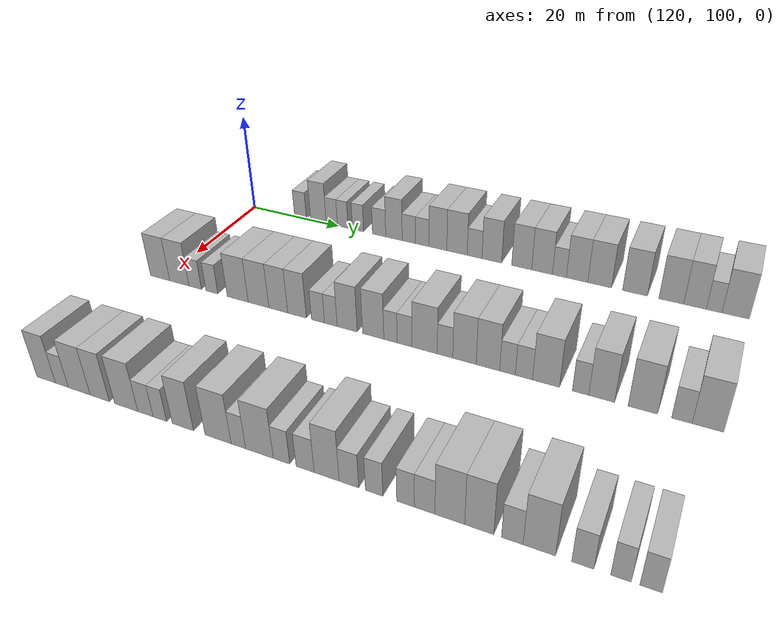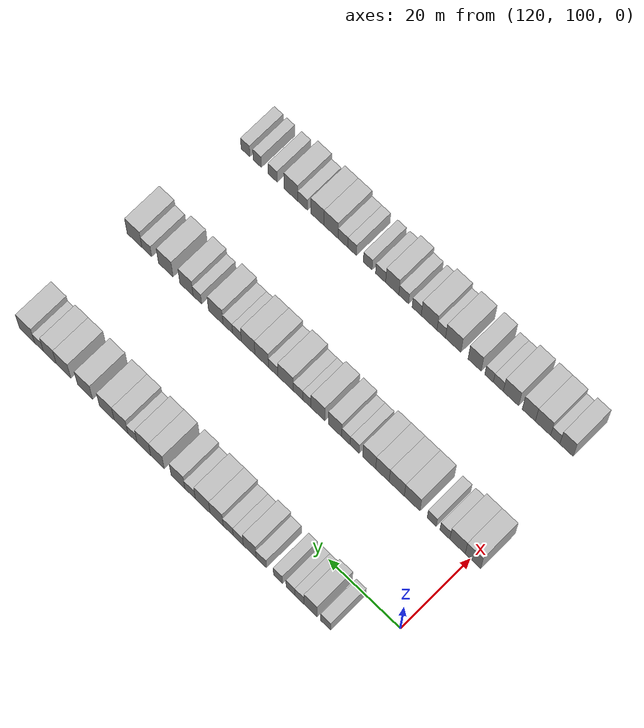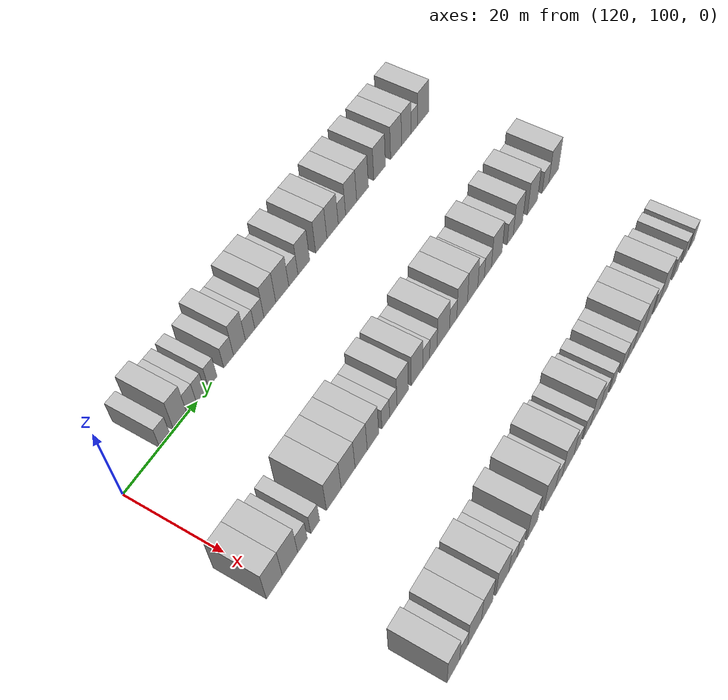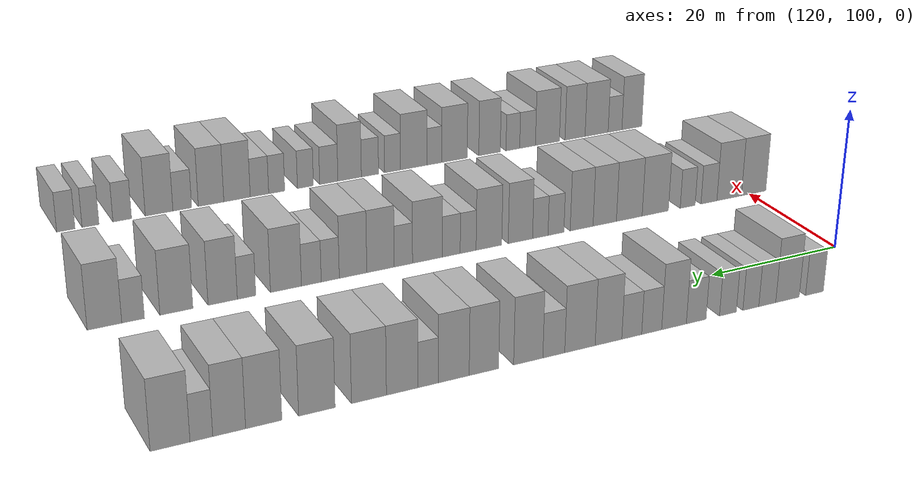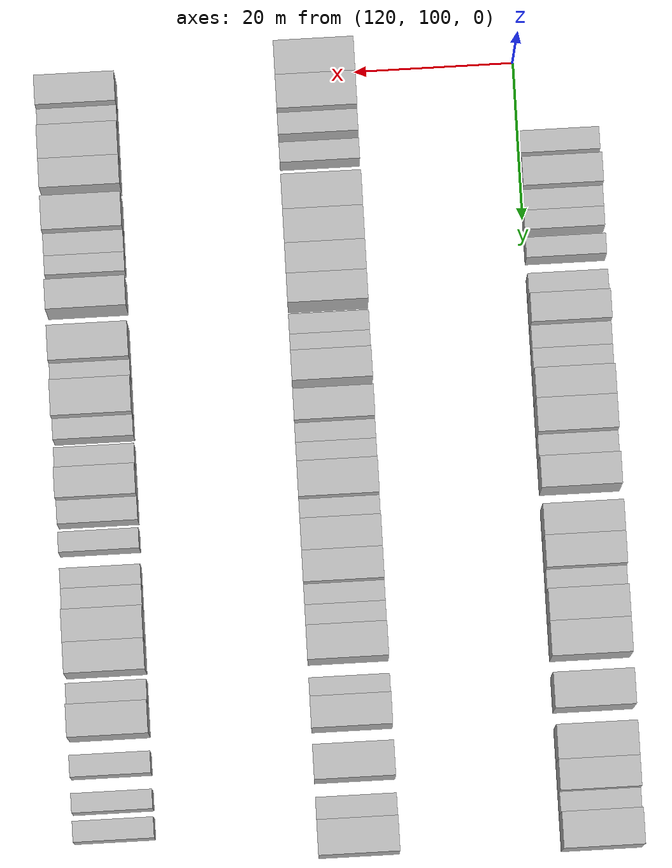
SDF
<sdf version="1.6">
 <world name="default">
  <model name="building_803">
   <static>1</static>
   <pose>115.0000 111.0965 0 0.000000 0.000000 0.000000</pose>
   <link name="link">
    <pose>0 0 3.00 0 0 0</pose>
    <collision name="collision"><geometry><box><size>10.0000 2.8066 6.0000</size></box></geometry></collision>
    <visual name="visual">
     <cast_shadows>0</cast_shadows>
     <geometry><box><size>10.0000 2.8066 6.0000</size></box></geometry>
     <material>
      <script>
       <uri>model://HANNAS_wall/materials/scripts</uri>
       <uri>model://HANNAS_wall/materials/textures</uri>
       <name>vrc/HANNAS_wall</name>
      </script>
     </material>
    </visual>
   </link>
  </model>
  <model name="building_804">
   <static>1</static>
   <pose>115.0000 115.3254 0 0.000000 0.000000 0.000000</pose>
   <link name="link">
    <pose>0 0 4.50 0 0 0</pose>
    <collision name="collision"><geometry><box><size>10.0000 3.6513 9.0000</size></box></geometry></collision>
    <visual name="visual">
     <cast_shadows>0</cast_shadows>
     <geometry><box><size>10.0000 3.6513 9.0000</size></box></geometry>
     <material>
      <script>
       <uri>model://HANNAS_wall/materials/scripts</uri>
       <uri>model://HANNAS_wall/materials/textures</uri>
       <name>vrc/HANNAS_wall</name>
      </script>
     </material>
    </visual>
   </link>
  </model>
  <model name="building_805">
   <static>1</static>
   <pose>115.0000 118.4562 0 0.000000 0.000000 0.000000</pose>
   <link name="link">
    <pose>0 0 3.00 0 0 0</pose>
    <collision name="collision"><geometry><box><size>10.0000 2.6103 6.0000</size></box></geometry></collision>
    <visual name="visual">
     <cast_shadows>0</cast_shadows>
     <geometry><box><size>10.0000 2.6103 6.0000</size></box></geometry>
     <material>
      <script>
       <uri>model://HANNAS_wall/materials/scripts</uri>
       <uri>model://HANNAS_wall/materials/textures</uri>
       <name>vrc/HANNAS_wall</name>
      </script>
     </material>
    </visual>
   </link>
  </model>
  <model name="building_806">
   <static>1</static>
   <pose>115.0000 120.9748 0 0.000000 0.000000 0.000000</pose>
   <link name="link">
    <pose>0 0 3.00 0 0 0</pose>
    <collision name="collision"><geometry><box><size>10.0000 2.4270 6.0000</size></box></geometry></collision>
    <visual name="visual">
     <cast_shadows>0</cast_shadows>
     <geometry><box><size>10.0000 2.4270 6.0000</size></box></geometry>
     <material>
      <script>
       <uri>model://HANNAS_wall/materials/scripts</uri>
       <uri>model://HANNAS_wall/materials/textures</uri>
       <name>vrc/HANNAS_wall</name>
      </script>
     </material>
    </visual>
   </link>
  </model>
  <model name="building_807">
   <static>1</static>
   <pose>115.0000 124.4572 0 0.000000 0.000000 0.000000</pose>
   <link name="link">
    <pose>0 0 3.00 0 0 0</pose>
    <collision name="collision"><geometry><box><size>10.0000 2.5378 6.0000</size></box></geometry></collision>
    <visual name="visual">
     <cast_shadows>0</cast_shadows>
     <geometry><box><size>10.0000 2.5378 6.0000</size></box></geometry>
     <material>
      <script>
       <uri>model://HANNAS_wall/materials/scripts</uri>
       <uri>model://HANNAS_wall/materials/textures</uri>
       <name>vrc/HANNAS_wall</name>
      </script>
     </material>
    </visual>
   </link>
  </model>
  <model name="building_808">
   <static>1</static>
   <pose>115.0000 129.1855 0 0.000000 0.000000 0.000000</pose>
   <link name="link">
    <pose>0 0 3.00 0 0 0</pose>
    <collision name="collision"><geometry><box><size>10.0000 2.9189 6.0000</size></box></geometry></collision>
    <visual name="visual">
     <cast_shadows>0</cast_shadows>
     <geometry><box><size>10.0000 2.9189 6.0000</size></box></geometry>
     <material>
      <script>
       <uri>model://HANNAS_wall/materials/scripts</uri>
       <uri>model://HANNAS_wall/materials/textures</uri>
       <name>vrc/HANNAS_wall</name>
      </script>
     </material>
    </visual>
   </link>
  </model>
  <model name="building_809">
   <static>1</static>
   <pose>115.0000 132.4509 0 0.000000 0.000000 0.000000</pose>
   <link name="link">
    <pose>0 0 4.50 0 0 0</pose>
    <collision name="collision"><geometry><box><size>10.0000 3.6120 9.0000</size></box></geometry></collision>
    <visual name="visual">
     <cast_shadows>0</cast_shadows>
     <geometry><box><size>10.0000 3.6120 9.0000</size></box></geometry>
     <material>
      <script>
       <uri>model://HANNAS_wall/materials/scripts</uri>
       <uri>model://HANNAS_wall/materials/textures</uri>
       <name>vrc/HANNAS_wall</name>
      </script>
     </material>
    </visual>
   </link>
  </model>
  <model name="building_810">
   <static>1</static>
   <pose>115.0000 135.7019 0 0.000000 0.000000 0.000000</pose>
   <link name="link">
    <pose>0 0 3.00 0 0 0</pose>
    <collision name="collision"><geometry><box><size>10.0000 2.8900 6.0000</size></box></geometry></collision>
    <visual name="visual">
     <cast_shadows>0</cast_shadows>
     <geometry><box><size>10.0000 2.8900 6.0000</size></box></geometry>
     <material>
      <script>
       <uri>model://HANNAS_wall/materials/scripts</uri>
       <uri>model://HANNAS_wall/materials/textures</uri>
       <name>vrc/HANNAS_wall</name>
      </script>
     </material>
    </visual>
   </link>
  </model>
  <model name="building_811">
   <static>1</static>
   <pose>115.0000 138.5668 0 0.000000 0.000000 0.000000</pose>
   <link name="link">
    <pose>0 0 3.00 0 0 0</pose>
    <collision name="collision"><geometry><box><size>10.0000 2.8397 6.0000</size></box></geometry></collision>
    <visual name="visual">
     <cast_shadows>0</cast_shadows>
     <geometry><box><size>10.0000 2.8397 6.0000</size></box></geometry>
     <material>
      <script>
       <uri>model://HANNAS_wall/materials/scripts</uri>
       <uri>model://HANNAS_wall/materials/textures</uri>
       <name>vrc/HANNAS_wall</name>
      </script>
     </material>
    </visual>
   </link>
  </model>
  <model name="building_812">
   <static>1</static>
   <pose>115.0000 141.8644 0 0.000000 0.000000 0.000000</pose>
   <link name="link">
    <pose>0 0 4.50 0 0 0</pose>
    <collision name="collision"><geometry><box><size>10.0000 3.7555 9.0000</size></box></geometry></collision>
    <visual name="visual">
     <cast_shadows>0</cast_shadows>
     <geometry><box><size>10.0000 3.7555 9.0000</size></box></geometry>
     <material>
      <script>
       <uri>model://HANNAS_wall/materials/scripts</uri>
       <uri>model://HANNAS_wall/materials/textures</uri>
       <name>vrc/HANNAS_wall</name>
      </script>
     </material>
    </visual>
   </link>
  </model>
  <model name="building_813">
   <static>1</static>
   <pose>115.0000 145.8538 0 0.000000 0.000000 0.000000</pose>
   <link name="link">
    <pose>0 0 4.50 0 0 0</pose>
    <collision name="collision"><geometry><box><size>10.0000 4.2234 9.0000</size></box></geometry></collision>
    <visual name="visual">
     <cast_shadows>0</cast_shadows>
     <geometry><box><size>10.0000 4.2234 9.0000</size></box></geometry>
     <material>
      <script>
       <uri>model://HANNAS_wall/materials/scripts</uri>
       <uri>model://HANNAS_wall/materials/textures</uri>
       <name>vrc/HANNAS_wall</name>
      </script>
     </material>
    </visual>
   </link>
  </model>
  <model name="building_814">
   <static>1</static>
   <pose>115.0000 149.4655 0 0.000000 0.000000 0.000000</pose>
   <link name="link">
    <pose>0 0 3.00 0 0 0</pose>
    <collision name="collision"><geometry><box><size>10.0000 3.0000 6.0000</size></box></geometry></collision>
    <visual name="visual">
     <cast_shadows>0</cast_shadows>
     <geometry><box><size>10.0000 3.0000 6.0000</size></box></geometry>
     <material>
      <script>
       <uri>model://HANNAS_wall/materials/scripts</uri>
       <uri>model://HANNAS_wall/materials/textures</uri>
       <name>vrc/HANNAS_wall</name>
      </script>
     </material>
    </visual>
   </link>
  </model>
  <model name="building_815">
   <static>1</static>
   <pose>115.0000 152.9398 0 0.000000 0.000000 0.000000</pose>
   <link name="link">
    <pose>0 0 4.50 0 0 0</pose>
    <collision name="collision"><geometry><box><size>10.0000 3.9487 9.0000</size></box></geometry></collision>
    <visual name="visual">
     <cast_shadows>0</cast_shadows>
     <geometry><box><size>10.0000 3.9487 9.0000</size></box></geometry>
     <material>
      <script>
       <uri>model://HANNAS_wall/materials/scripts</uri>
       <uri>model://HANNAS_wall/materials/textures</uri>
       <name>vrc/HANNAS_wall</name>
      </script>
     </material>
    </visual>
   </link>
  </model>
  <model name="building_816">
   <static>1</static>
   <pose>115.0000 158.8554 0 0.000000 0.000000 0.000000</pose>
   <link name="link">
    <pose>0 0 4.50 0 0 0</pose>
    <collision name="collision"><geometry><box><size>10.0000 3.8824 9.0000</size></box></geometry></collision>
    <visual name="visual">
     <cast_shadows>0</cast_shadows>
     <geometry><box><size>10.0000 3.8824 9.0000</size></box></geometry>
     <material>
      <script>
       <uri>model://HANNAS_wall/materials/scripts</uri>
       <uri>model://HANNAS_wall/materials/textures</uri>
       <name>vrc/HANNAS_wall</name>
      </script>
     </material>
    </visual>
   </link>
  </model>
  <model name="building_817">
   <static>1</static>
   <pose>115.0000 162.7954 0 0.000000 0.000000 0.000000</pose>
   <link name="link">
    <pose>0 0 4.50 0 0 0</pose>
    <collision name="collision"><geometry><box><size>10.0000 3.9976 9.0000</size></box></geometry></collision>
    <visual name="visual">
     <cast_shadows>0</cast_shadows>
     <geometry><box><size>10.0000 3.9976 9.0000</size></box></geometry>
     <material>
      <script>
       <uri>model://HANNAS_wall/materials/scripts</uri>
       <uri>model://HANNAS_wall/materials/textures</uri>
       <name>vrc/HANNAS_wall</name>
      </script>
     </material>
    </visual>
   </link>
  </model>
  <model name="building_818">
   <static>1</static>
   <pose>115.0000 166.1039 0 0.000000 0.000000 0.000000</pose>
   <link name="link">
    <pose>0 0 3.00 0 0 0</pose>
    <collision name="collision"><geometry><box><size>10.0000 2.6195 6.0000</size></box></geometry></collision>
    <visual name="visual">
     <cast_shadows>0</cast_shadows>
     <geometry><box><size>10.0000 2.6195 6.0000</size></box></geometry>
     <material>
      <script>
       <uri>model://HANNAS_wall/materials/scripts</uri>
       <uri>model://HANNAS_wall/materials/textures</uri>
       <name>vrc/HANNAS_wall</name>
      </script>
     </material>
    </visual>
   </link>
  </model>
  <model name="building_819">
   <static>1</static>
   <pose>115.0000 169.4105 0 0.000000 0.000000 0.000000</pose>
   <link name="link">
    <pose>0 0 4.50 0 0 0</pose>
    <collision name="collision"><geometry><box><size>10.0000 3.9935 9.0000</size></box></geometry></collision>
    <visual name="visual">
     <cast_shadows>0</cast_shadows>
     <geometry><box><size>10.0000 3.9935 9.0000</size></box></geometry>
     <material>
      <script>
       <uri>model://HANNAS_wall/materials/scripts</uri>
       <uri>model://HANNAS_wall/materials/textures</uri>
       <name>vrc/HANNAS_wall</name>
      </script>
     </material>
    </visual>
   </link>
  </model>
  <model name="building_820">
   <static>1</static>
   <pose>115.0000 173.5802 0 0.000000 0.000000 0.000000</pose>
   <link name="link">
    <pose>0 0 4.50 0 0 0</pose>
    <collision name="collision"><geometry><box><size>10.0000 4.3460 9.0000</size></box></geometry></collision>
    <visual name="visual">
     <cast_shadows>0</cast_shadows>
     <geometry><box><size>10.0000 4.3460 9.0000</size></box></geometry>
     <material>
      <script>
       <uri>model://HANNAS_wall/materials/scripts</uri>
       <uri>model://HANNAS_wall/materials/textures</uri>
       <name>vrc/HANNAS_wall</name>
      </script>
     </material>
    </visual>
   </link>
  </model>
  <model name="building_821">
   <static>1</static>
   <pose>115.0000 179.9639 0 0.000000 0.000000 0.000000</pose>
   <link name="link">
    <pose>0 0 4.50 0 0 0</pose>
    <collision name="collision"><geometry><box><size>10.0000 4.4213 9.0000</size></box></geometry></collision>
    <visual name="visual">
     <cast_shadows>0</cast_shadows>
     <geometry><box><size>10.0000 4.4213 9.0000</size></box></geometry>
     <material>
      <script>
       <uri>model://HANNAS_wall/materials/scripts</uri>
       <uri>model://HANNAS_wall/materials/textures</uri>
       <name>vrc/HANNAS_wall</name>
      </script>
     </material>
    </visual>
   </link>
  </model>
  <model name="building_822">
   <static>1</static>
   <pose>115.0000 186.3128 0 0.000000 0.000000 0.000000</pose>
   <link name="link">
    <pose>0 0 4.50 0 0 0</pose>
    <collision name="collision"><geometry><box><size>10.0000 4.2764 9.0000</size></box></geometry></collision>
    <visual name="visual">
     <cast_shadows>0</cast_shadows>
     <geometry><box><size>10.0000 4.2764 9.0000</size></box></geometry>
     <material>
      <script>
       <uri>model://HANNAS_wall/materials/scripts</uri>
       <uri>model://HANNAS_wall/materials/textures</uri>
       <name>vrc/HANNAS_wall</name>
      </script>
     </material>
    </visual>
   </link>
  </model>
  <model name="building_823">
   <static>1</static>
   <pose>115.0000 190.3576 0 0.000000 0.000000 0.000000</pose>
   <link name="link">
    <pose>0 0 4.50 0 0 0</pose>
    <collision name="collision"><geometry><box><size>10.0000 3.8133 9.0000</size></box></geometry></collision>
    <visual name="visual">
     <cast_shadows>0</cast_shadows>
     <geometry><box><size>10.0000 3.8133 9.0000</size></box></geometry>
     <material>
      <script>
       <uri>model://HANNAS_wall/materials/scripts</uri>
       <uri>model://HANNAS_wall/materials/textures</uri>
       <name>vrc/HANNAS_wall</name>
      </script>
     </material>
    </visual>
   </link>
  </model>
  <model name="building_824">
   <static>1</static>
   <pose>115.0000 193.5667 0 0.000000 0.000000 0.000000</pose>
   <link name="link">
    <pose>0 0 3.00 0 0 0</pose>
    <collision name="collision"><geometry><box><size>10.0000 2.6048 6.0000</size></box></geometry></collision>
    <visual name="visual">
     <cast_shadows>0</cast_shadows>
     <geometry><box><size>10.0000 2.6048 6.0000</size></box></geometry>
     <material>
      <script>
       <uri>model://HANNAS_wall/materials/scripts</uri>
       <uri>model://HANNAS_wall/materials/textures</uri>
       <name>vrc/HANNAS_wall</name>
      </script>
     </material>
    </visual>
   </link>
  </model>
  <model name="building_825">
   <static>1</static>
   <pose>115.0000 197.1175 0 0.000000 0.000000 0.000000</pose>
   <link name="link">
    <pose>0 0 4.50 0 0 0</pose>
    <collision name="collision"><geometry><box><size>10.0000 4.4969 9.0000</size></box></geometry></collision>
    <visual name="visual">
     <cast_shadows>0</cast_shadows>
     <geometry><box><size>10.0000 4.4969 9.0000</size></box></geometry>
     <material>
      <script>
       <uri>model://HANNAS_wall/materials/scripts</uri>
       <uri>model://HANNAS_wall/materials/textures</uri>
       <name>vrc/HANNAS_wall</name>
      </script>
     </material>
    </visual>
   </link>
  </model>
  <model name="building_1028">
   <static>1</static>
   <pose>145.0000 99.2773 0 0.000000 0.000000 0.000000</pose>
   <link name="link">
    <pose>0 0 4.50 0 0 0</pose>
    <collision name="collision"><geometry><box><size>10.0000 4.3175 9.0000</size></box></geometry></collision>
    <visual name="visual">
     <cast_shadows>0</cast_shadows>
     <geometry><box><size>10.0000 4.3175 9.0000</size></box></geometry>
     <material>
      <script>
       <uri>model://HANNAS_wall/materials/scripts</uri>
       <uri>model://HANNAS_wall/materials/textures</uri>
       <name>vrc/HANNAS_wall</name>
      </script>
     </material>
    </visual>
   </link>
  </model>
  <model name="building_1029">
   <static>1</static>
   <pose>145.0000 103.5756 0 0.000000 0.000000 0.000000</pose>
   <link name="link">
    <pose>0 0 4.50 0 0 0</pose>
    <collision name="collision"><geometry><box><size>10.0000 4.2792 9.0000</size></box></geometry></collision>
    <visual name="visual">
     <cast_shadows>0</cast_shadows>
     <geometry><box><size>10.0000 4.2792 9.0000</size></box></geometry>
     <material>
      <script>
       <uri>model://HANNAS_wall/materials/scripts</uri>
       <uri>model://HANNAS_wall/materials/textures</uri>
       <name>vrc/HANNAS_wall</name>
      </script>
     </material>
    </visual>
   </link>
  </model>
  <model name="building_1030">
   <static>1</static>
   <pose>145.0000 107.0896 0 0.000000 0.000000 0.000000</pose>
   <link name="link">
    <pose>0 0 3.00 0 0 0</pose>
    <collision name="collision"><geometry><box><size>10.0000 2.7488 6.0000</size></box></geometry></collision>
    <visual name="visual">
     <cast_shadows>0</cast_shadows>
     <geometry><box><size>10.0000 2.7488 6.0000</size></box></geometry>
     <material>
      <script>
       <uri>model://HANNAS_wall/materials/scripts</uri>
       <uri>model://HANNAS_wall/materials/textures</uri>
       <name>vrc/HANNAS_wall</name>
      </script>
     </material>
    </visual>
   </link>
  </model>
  <model name="building_1031">
   <static>1</static>
   <pose>145.0000 110.7376 0 0.000000 0.000000 0.000000</pose>
   <link name="link">
    <pose>0 0 3.00 0 0 0</pose>
    <collision name="collision"><geometry><box><size>10.0000 2.5472 6.0000</size></box></geometry></collision>
    <visual name="visual">
     <cast_shadows>0</cast_shadows>
     <geometry><box><size>10.0000 2.5472 6.0000</size></box></geometry>
     <material>
      <script>
       <uri>model://HANNAS_wall/materials/scripts</uri>
       <uri>model://HANNAS_wall/materials/textures</uri>
       <name>vrc/HANNAS_wall</name>
      </script>
     </material>
    </visual>
   </link>
  </model>
  <model name="building_1032">
   <static>1</static>
   <pose>145.0000 116.2101 0 0.000000 0.000000 0.000000</pose>
   <link name="link">
    <pose>0 0 4.50 0 0 0</pose>
    <collision name="collision"><geometry><box><size>10.0000 4.3977 9.0000</size></box></geometry></collision>
    <visual name="visual">
     <cast_shadows>0</cast_shadows>
     <geometry><box><size>10.0000 4.3977 9.0000</size></box></geometry>
     <material>
      <script>
       <uri>model://HANNAS_wall/materials/scripts</uri>
       <uri>model://HANNAS_wall/materials/textures</uri>
       <name>vrc/HANNAS_wall</name>
      </script>
     </material>
    </visual>
   </link>
  </model>
  <model name="building_1033">
   <static>1</static>
   <pose>145.0000 120.5376 0 0.000000 0.000000 0.000000</pose>
   <link name="link">
    <pose>0 0 4.50 0 0 0</pose>
    <collision name="collision"><geometry><box><size>10.0000 4.2573 9.0000</size></box></geometry></collision>
    <visual name="visual">
     <cast_shadows>0</cast_shadows>
     <geometry><box><size>10.0000 4.2573 9.0000</size></box></geometry>
     <material>
      <script>
       <uri>model://HANNAS_wall/materials/scripts</uri>
       <uri>model://HANNAS_wall/materials/textures</uri>
       <name>vrc/HANNAS_wall</name>
      </script>
     </material>
    </visual>
   </link>
  </model>
  <model name="building_1034">
   <static>1</static>
   <pose>145.0000 124.5694 0 0.000000 0.000000 0.000000</pose>
   <link name="link">
    <pose>0 0 4.50 0 0 0</pose>
    <collision name="collision"><geometry><box><size>10.0000 3.8062 9.0000</size></box></geometry></collision>
    <visual name="visual">
     <cast_shadows>0</cast_shadows>
     <geometry><box><size>10.0000 3.8062 9.0000</size></box></geometry>
     <material>
      <script>
       <uri>model://HANNAS_wall/materials/scripts</uri>
       <uri>model://HANNAS_wall/materials/textures</uri>
       <name>vrc/HANNAS_wall</name>
      </script>
     </material>
    </visual>
   </link>
  </model>
  <model name="building_1035">
   <static>1</static>
   <pose>145.0000 128.3144 0 0.000000 0.000000 0.000000</pose>
   <link name="link">
    <pose>0 0 4.50 0 0 0</pose>
    <collision name="collision"><geometry><box><size>10.0000 3.6839 9.0000</size></box></geometry></collision>
    <visual name="visual">
     <cast_shadows>0</cast_shadows>
     <geometry><box><size>10.0000 3.6839 9.0000</size></box></geometry>
     <material>
      <script>
       <uri>model://HANNAS_wall/materials/scripts</uri>
       <uri>model://HANNAS_wall/materials/textures</uri>
       <name>vrc/HANNAS_wall</name>
      </script>
     </material>
    </visual>
   </link>
  </model>
  <model name="building_1036">
   <static>1</static>
   <pose>145.0000 132.4165 0 0.000000 0.000000 0.000000</pose>
   <link name="link">
    <pose>0 0 3.00 0 0 0</pose>
    <collision name="collision"><geometry><box><size>10.0000 2.5203 6.0000</size></box></geometry></collision>
    <visual name="visual">
     <cast_shadows>0</cast_shadows>
     <geometry><box><size>10.0000 2.5203 6.0000</size></box></geometry>
     <material>
      <script>
       <uri>model://HANNAS_wall/materials/scripts</uri>
       <uri>model://HANNAS_wall/materials/textures</uri>
       <name>vrc/HANNAS_wall</name>
      </script>
     </material>
    </visual>
   </link>
  </model>
  <model name="building_1037">
   <static>1</static>
   <pose>145.0000 134.8936 0 0.000000 0.000000 0.000000</pose>
   <link name="link">
    <pose>0 0 3.00 0 0 0</pose>
    <collision name="collision"><geometry><box><size>10.0000 2.4339 6.0000</size></box></geometry></collision>
    <visual name="visual">
     <cast_shadows>0</cast_shadows>
     <geometry><box><size>10.0000 2.4339 6.0000</size></box></geometry>
     <material>
      <script>
       <uri>model://HANNAS_wall/materials/scripts</uri>
       <uri>model://HANNAS_wall/materials/textures</uri>
       <name>vrc/HANNAS_wall</name>
      </script>
     </material>
    </visual>
   </link>
  </model>
  <model name="building_1038">
   <static>1</static>
   <pose>145.0000 138.0073 0 0.000000 0.000000 0.000000</pose>
   <link name="link">
    <pose>0 0 4.50 0 0 0</pose>
    <collision name="collision"><geometry><box><size>10.0000 3.7935 9.0000</size></box></geometry></collision>
    <visual name="visual">
     <cast_shadows>0</cast_shadows>
     <geometry><box><size>10.0000 3.7935 9.0000</size></box></geometry>
     <material>
      <script>
       <uri>model://HANNAS_wall/materials/scripts</uri>
       <uri>model://HANNAS_wall/materials/textures</uri>
       <name>vrc/HANNAS_wall</name>
      </script>
     </material>
    </visual>
   </link>
  </model>
  <model name="building_1039">
   <static>1</static>
   <pose>145.0000 142.8671 0 0.000000 0.000000 0.000000</pose>
   <link name="link">
    <pose>0 0 4.50 0 0 0</pose>
    <collision name="collision"><geometry><box><size>10.0000 3.9260 9.0000</size></box></geometry></collision>
    <visual name="visual">
     <cast_shadows>0</cast_shadows>
     <geometry><box><size>10.0000 3.9260 9.0000</size></box></geometry>
     <material>
      <script>
       <uri>model://HANNAS_wall/materials/scripts</uri>
       <uri>model://HANNAS_wall/materials/textures</uri>
       <name>vrc/HANNAS_wall</name>
      </script>
     </material>
    </visual>
   </link>
  </model>
  <model name="building_1040">
   <static>1</static>
   <pose>145.0000 146.0361 0 0.000000 0.000000 0.000000</pose>
   <link name="link">
    <pose>0 0 3.00 0 0 0</pose>
    <collision name="collision"><geometry><box><size>10.0000 2.4121 6.0000</size></box></geometry></collision>
    <visual name="visual">
     <cast_shadows>0</cast_shadows>
     <geometry><box><size>10.0000 2.4121 6.0000</size></box></geometry>
     <material>
      <script>
       <uri>model://HANNAS_wall/materials/scripts</uri>
       <uri>model://HANNAS_wall/materials/textures</uri>
       <name>vrc/HANNAS_wall</name>
      </script>
     </material>
    </visual>
   </link>
  </model>
  <model name="building_1041">
   <static>1</static>
   <pose>145.0000 148.5775 0 0.000000 0.000000 0.000000</pose>
   <link name="link">
    <pose>0 0 3.00 0 0 0</pose>
    <collision name="collision"><geometry><box><size>10.0000 2.6707 6.0000</size></box></geometry></collision>
    <visual name="visual">
     <cast_shadows>0</cast_shadows>
     <geometry><box><size>10.0000 2.6707 6.0000</size></box></geometry>
     <material>
      <script>
       <uri>model://HANNAS_wall/materials/scripts</uri>
       <uri>model://HANNAS_wall/materials/textures</uri>
       <name>vrc/HANNAS_wall</name>
      </script>
     </material>
    </visual>
   </link>
  </model>
  <model name="building_1042">
   <static>1</static>
   <pose>145.0000 152.1285 0 0.000000 0.000000 0.000000</pose>
   <link name="link">
    <pose>0 0 4.50 0 0 0</pose>
    <collision name="collision"><geometry><box><size>10.0000 4.4313 9.0000</size></box></geometry></collision>
    <visual name="visual">
     <cast_shadows>0</cast_shadows>
     <geometry><box><size>10.0000 4.4313 9.0000</size></box></geometry>
     <material>
      <script>
       <uri>model://HANNAS_wall/materials/scripts</uri>
       <uri>model://HANNAS_wall/materials/textures</uri>
       <name>vrc/HANNAS_wall</name>
      </script>
     </material>
    </visual>
   </link>
  </model>
  <model name="building_1043">
   <static>1</static>
   <pose>145.0000 155.6849 0 0.000000 0.000000 0.000000</pose>
   <link name="link">
    <pose>0 0 3.00 0 0 0</pose>
    <collision name="collision"><geometry><box><size>10.0000 2.6815 6.0000</size></box></geometry></collision>
    <visual name="visual">
     <cast_shadows>0</cast_shadows>
     <geometry><box><size>10.0000 2.6815 6.0000</size></box></geometry>
     <material>
      <script>
       <uri>model://HANNAS_wall/materials/scripts</uri>
       <uri>model://HANNAS_wall/materials/textures</uri>
       <name>vrc/HANNAS_wall</name>
      </script>
     </material>
    </visual>
   </link>
  </model>
  <model name="building_1044">
   <static>1</static>
   <pose>145.0000 159.0097 0 0.000000 0.000000 0.000000</pose>
   <link name="link">
    <pose>0 0 4.50 0 0 0</pose>
    <collision name="collision"><geometry><box><size>10.0000 3.9681 9.0000</size></box></geometry></collision>
    <visual name="visual">
     <cast_shadows>0</cast_shadows>
     <geometry><box><size>10.0000 3.9681 9.0000</size></box></geometry>
     <material>
      <script>
       <uri>model://HANNAS_wall/materials/scripts</uri>
       <uri>model://HANNAS_wall/materials/textures</uri>
       <name>vrc/HANNAS_wall</name>
      </script>
     </material>
    </visual>
   </link>
  </model>
  <model name="building_1045">
   <static>1</static>
   <pose>145.0000 162.9580 0 0.000000 0.000000 0.000000</pose>
   <link name="link">
    <pose>0 0 4.50 0 0 0</pose>
    <collision name="collision"><geometry><box><size>10.0000 3.9285 9.0000</size></box></geometry></collision>
    <visual name="visual">
     <cast_shadows>0</cast_shadows>
     <geometry><box><size>10.0000 3.9285 9.0000</size></box></geometry>
     <material>
      <script>
       <uri>model://HANNAS_wall/materials/scripts</uri>
       <uri>model://HANNAS_wall/materials/textures</uri>
       <name>vrc/HANNAS_wall</name>
      </script>
     </material>
    </visual>
   </link>
  </model>
  <model name="building_1046">
   <static>1</static>
   <pose>145.0000 166.1968 0 0.000000 0.000000 0.000000</pose>
   <link name="link">
    <pose>0 0 3.00 0 0 0</pose>
    <collision name="collision"><geometry><box><size>10.0000 2.5492 6.0000</size></box></geometry></collision>
    <visual name="visual">
     <cast_shadows>0</cast_shadows>
     <geometry><box><size>10.0000 2.5492 6.0000</size></box></geometry>
     <material>
      <script>
       <uri>model://HANNAS_wall/materials/scripts</uri>
       <uri>model://HANNAS_wall/materials/textures</uri>
       <name>vrc/HANNAS_wall</name>
      </script>
     </material>
    </visual>
   </link>
  </model>
  <model name="building_1047">
   <static>1</static>
   <pose>145.0000 168.8538 0 0.000000 0.000000 0.000000</pose>
   <link name="link">
    <pose>0 0 3.00 0 0 0</pose>
    <collision name="collision"><geometry><box><size>10.0000 2.7649 6.0000</size></box></geometry></collision>
    <visual name="visual">
     <cast_shadows>0</cast_shadows>
     <geometry><box><size>10.0000 2.7649 6.0000</size></box></geometry>
     <material>
      <script>
       <uri>model://HANNAS_wall/materials/scripts</uri>
       <uri>model://HANNAS_wall/materials/textures</uri>
       <name>vrc/HANNAS_wall</name>
      </script>
     </material>
    </visual>
   </link>
  </model>
  <model name="building_1048">
   <static>1</static>
   <pose>145.0000 172.3746 0 0.000000 0.000000 0.000000</pose>
   <link name="link">
    <pose>0 0 4.50 0 0 0</pose>
    <collision name="collision"><geometry><box><size>10.0000 4.2767 9.0000</size></box></geometry></collision>
    <visual name="visual">
     <cast_shadows>0</cast_shadows>
     <geometry><box><size>10.0000 4.2767 9.0000</size></box></geometry>
     <material>
      <script>
       <uri>model://HANNAS_wall/materials/scripts</uri>
       <uri>model://HANNAS_wall/materials/textures</uri>
       <name>vrc/HANNAS_wall</name>
      </script>
     </material>
    </visual>
   </link>
  </model>
  <model name="building_1049">
   <static>1</static>
   <pose>145.0000 177.7633 0 0.000000 0.000000 0.000000</pose>
   <link name="link">
    <pose>0 0 3.00 0 0 0</pose>
    <collision name="collision"><geometry><box><size>10.0000 2.5007 6.0000</size></box></geometry></collision>
    <visual name="visual">
     <cast_shadows>0</cast_shadows>
     <geometry><box><size>10.0000 2.5007 6.0000</size></box></geometry>
     <material>
      <script>
       <uri>model://HANNAS_wall/materials/scripts</uri>
       <uri>model://HANNAS_wall/materials/textures</uri>
       <name>vrc/HANNAS_wall</name>
      </script>
     </material>
    </visual>
   </link>
  </model>
  <model name="building_1050">
   <static>1</static>
   <pose>145.0000 180.9737 0 0.000000 0.000000 0.000000</pose>
   <link name="link">
    <pose>0 0 4.50 0 0 0</pose>
    <collision name="collision"><geometry><box><size>10.0000 3.9202 9.0000</size></box></geometry></collision>
    <visual name="visual">
     <cast_shadows>0</cast_shadows>
     <geometry><box><size>10.0000 3.9202 9.0000</size></box></geometry>
     <material>
      <script>
       <uri>model://HANNAS_wall/materials/scripts</uri>
       <uri>model://HANNAS_wall/materials/textures</uri>
       <name>vrc/HANNAS_wall</name>
      </script>
     </material>
    </visual>
   </link>
  </model>
  <model name="building_1051">
   <static>1</static>
   <pose>145.0000 187.0936 0 0.000000 0.000000 0.000000</pose>
   <link name="link">
    <pose>0 0 4.50 0 0 0</pose>
    <collision name="collision"><geometry><box><size>10.0000 4.3195 9.0000</size></box></geometry></collision>
    <visual name="visual">
     <cast_shadows>0</cast_shadows>
     <geometry><box><size>10.0000 4.3195 9.0000</size></box></geometry>
     <material>
      <script>
       <uri>model://HANNAS_wall/materials/scripts</uri>
       <uri>model://HANNAS_wall/materials/textures</uri>
       <name>vrc/HANNAS_wall</name>
      </script>
     </material>
    </visual>
   </link>
  </model>
  <model name="building_1052">
   <static>1</static>
   <pose>145.0000 192.7044 0 0.000000 0.000000 0.000000</pose>
   <link name="link">
    <pose>0 0 3.00 0 0 0</pose>
    <collision name="collision"><geometry><box><size>10.0000 2.9022 6.0000</size></box></geometry></collision>
    <visual name="visual">
     <cast_shadows>0</cast_shadows>
     <geometry><box><size>10.0000 2.9022 6.0000</size></box></geometry>
     <material>
      <script>
       <uri>model://HANNAS_wall/materials/scripts</uri>
       <uri>model://HANNAS_wall/materials/textures</uri>
       <name>vrc/HANNAS_wall</name>
      </script>
     </material>
    </visual>
   </link>
  </model>
  <model name="building_1053">
   <static>1</static>
   <pose>145.0000 196.3461 0 0.000000 0.000000 0.000000</pose>
   <link name="link">
    <pose>0 0 4.50 0 0 0</pose>
    <collision name="collision"><geometry><box><size>10.0000 4.3813 9.0000</size></box></geometry></collision>
    <visual name="visual">
     <cast_shadows>0</cast_shadows>
     <geometry><box><size>10.0000 4.3813 9.0000</size></box></geometry>
     <material>
      <script>
       <uri>model://HANNAS_wall/materials/scripts</uri>
       <uri>model://HANNAS_wall/materials/textures</uri>
       <name>vrc/HANNAS_wall</name>
      </script>
     </material>
    </visual>
   </link>
  </model>
  <model name="building_1248">
   <static>1</static>
   <pose>175.0000 101.6950 0 0.000000 0.000000 0.000000</pose>
   <link name="link">
    <pose>0 0 4.50 0 0 0</pose>
    <collision name="collision"><geometry><box><size>10.0000 3.7354 9.0000</size></box></geometry></collision>
    <visual name="visual">
     <cast_shadows>0</cast_shadows>
     <geometry><box><size>10.0000 3.7354 9.0000</size></box></geometry>
     <material>
      <script>
       <uri>model://HANNAS_wall/materials/scripts</uri>
       <uri>model://HANNAS_wall/materials/textures</uri>
       <name>vrc/HANNAS_wall</name>
      </script>
     </material>
    </visual>
   </link>
  </model>
  <model name="building_1249">
   <static>1</static>
   <pose>175.0000 104.8437 0 0.000000 0.000000 0.000000</pose>
   <link name="link">
    <pose>0 0 3.00 0 0 0</pose>
    <collision name="collision"><geometry><box><size>10.0000 2.5620 6.0000</size></box></geometry></collision>
    <visual name="visual">
     <cast_shadows>0</cast_shadows>
     <geometry><box><size>10.0000 2.5620 6.0000</size></box></geometry>
     <material>
      <script>
       <uri>model://HANNAS_wall/materials/scripts</uri>
       <uri>model://HANNAS_wall/materials/textures</uri>
       <name>vrc/HANNAS_wall</name>
      </script>
     </material>
    </visual>
   </link>
  </model>
  <model name="building_1250">
   <static>1</static>
   <pose>175.0000 108.2486 0 0.000000 0.000000 0.000000</pose>
   <link name="link">
    <pose>0 0 4.50 0 0 0</pose>
    <collision name="collision"><geometry><box><size>10.0000 4.2479 9.0000</size></box></geometry></collision>
    <visual name="visual">
     <cast_shadows>0</cast_shadows>
     <geometry><box><size>10.0000 4.2479 9.0000</size></box></geometry>
     <material>
      <script>
       <uri>model://HANNAS_wall/materials/scripts</uri>
       <uri>model://HANNAS_wall/materials/textures</uri>
       <name>vrc/HANNAS_wall</name>
      </script>
     </material>
    </visual>
   </link>
  </model>
  <model name="building_1251">
   <static>1</static>
   <pose>175.0000 112.2063 0 0.000000 0.000000 0.000000</pose>
   <link name="link">
    <pose>0 0 4.50 0 0 0</pose>
    <collision name="collision"><geometry><box><size>10.0000 3.6673 9.0000</size></box></geometry></collision>
    <visual name="visual">
     <cast_shadows>0</cast_shadows>
     <geometry><box><size>10.0000 3.6673 9.0000</size></box></geometry>
     <material>
      <script>
       <uri>model://HANNAS_wall/materials/scripts</uri>
       <uri>model://HANNAS_wall/materials/textures</uri>
       <name>vrc/HANNAS_wall</name>
      </script>
     </material>
    </visual>
   </link>
  </model>
  <model name="building_1252">
   <static>1</static>
   <pose>175.0000 117.1950 0 0.000000 0.000000 0.000000</pose>
   <link name="link">
    <pose>0 0 4.50 0 0 0</pose>
    <collision name="collision"><geometry><box><size>10.0000 4.3101 9.0000</size></box></geometry></collision>
    <visual name="visual">
     <cast_shadows>0</cast_shadows>
     <geometry><box><size>10.0000 4.3101 9.0000</size></box></geometry>
     <material>
      <script>
       <uri>model://HANNAS_wall/materials/scripts</uri>
       <uri>model://HANNAS_wall/materials/textures</uri>
       <name>vrc/HANNAS_wall</name>
      </script>
     </material>
    </visual>
   </link>
  </model>
  <model name="building_1253">
   <static>1</static>
   <pose>175.0000 120.7467 0 0.000000 0.000000 0.000000</pose>
   <link name="link">
    <pose>0 0 3.00 0 0 0</pose>
    <collision name="collision"><geometry><box><size>10.0000 2.7934 6.0000</size></box></geometry></collision>
    <visual name="visual">
     <cast_shadows>0</cast_shadows>
     <geometry><box><size>10.0000 2.7934 6.0000</size></box></geometry>
     <material>
      <script>
       <uri>model://HANNAS_wall/materials/scripts</uri>
       <uri>model://HANNAS_wall/materials/textures</uri>
       <name>vrc/HANNAS_wall</name>
      </script>
     </material>
    </visual>
   </link>
  </model>
  <model name="building_1254">
   <static>1</static>
   <pose>175.0000 123.3521 0 0.000000 0.000000 0.000000</pose>
   <link name="link">
    <pose>0 0 3.00 0 0 0</pose>
    <collision name="collision"><geometry><box><size>10.0000 2.4175 6.0000</size></box></geometry></collision>
    <visual name="visual">
     <cast_shadows>0</cast_shadows>
     <geometry><box><size>10.0000 2.4175 6.0000</size></box></geometry>
     <material>
      <script>
       <uri>model://HANNAS_wall/materials/scripts</uri>
       <uri>model://HANNAS_wall/materials/textures</uri>
       <name>vrc/HANNAS_wall</name>
      </script>
     </material>
    </visual>
   </link>
  </model>
  <model name="building_1255">
   <static>1</static>
   <pose>175.0000 127.4280 0 0.000000 0.000000 0.000000</pose>
   <link name="link">
    <pose>0 0 4.50 0 0 0</pose>
    <collision name="collision"><geometry><box><size>10.0000 3.7342 9.0000</size></box></geometry></collision>
    <visual name="visual">
     <cast_shadows>0</cast_shadows>
     <geometry><box><size>10.0000 3.7342 9.0000</size></box></geometry>
     <material>
      <script>
       <uri>model://HANNAS_wall/materials/scripts</uri>
       <uri>model://HANNAS_wall/materials/textures</uri>
       <name>vrc/HANNAS_wall</name>
      </script>
     </material>
    </visual>
   </link>
  </model>
  <model name="building_1256">
   <static>1</static>
   <pose>175.0000 133.4938 0 0.000000 0.000000 0.000000</pose>
   <link name="link">
    <pose>0 0 4.50 0 0 0</pose>
    <collision name="collision"><geometry><box><size>10.0000 4.3973 9.0000</size></box></geometry></collision>
    <visual name="visual">
     <cast_shadows>0</cast_shadows>
     <geometry><box><size>10.0000 4.3973 9.0000</size></box></geometry>
     <material>
      <script>
       <uri>model://HANNAS_wall/materials/scripts</uri>
       <uri>model://HANNAS_wall/materials/textures</uri>
       <name>vrc/HANNAS_wall</name>
      </script>
     </material>
    </visual>
   </link>
  </model>
  <model name="building_1257">
   <static>1</static>
   <pose>175.0000 136.8965 0 0.000000 0.000000 0.000000</pose>
   <link name="link">
    <pose>0 0 3.00 0 0 0</pose>
    <collision name="collision"><geometry><box><size>10.0000 2.4082 6.0000</size></box></geometry></collision>
    <visual name="visual">
     <cast_shadows>0</cast_shadows>
     <geometry><box><size>10.0000 2.4082 6.0000</size></box></geometry>
     <material>
      <script>
       <uri>model://HANNAS_wall/materials/scripts</uri>
       <uri>model://HANNAS_wall/materials/textures</uri>
       <name>vrc/HANNAS_wall</name>
      </script>
     </material>
    </visual>
   </link>
  </model>
  <model name="building_1258">
   <static>1</static>
   <pose>175.0000 140.3497 0 0.000000 0.000000 0.000000</pose>
   <link name="link">
    <pose>0 0 4.50 0 0 0</pose>
    <collision name="collision"><geometry><box><size>10.0000 4.4983 9.0000</size></box></geometry></collision>
    <visual name="visual">
     <cast_shadows>0</cast_shadows>
     <geometry><box><size>10.0000 4.4983 9.0000</size></box></geometry>
     <material>
      <script>
       <uri>model://HANNAS_wall/materials/scripts</uri>
       <uri>model://HANNAS_wall/materials/textures</uri>
       <name>vrc/HANNAS_wall</name>
      </script>
     </material>
    </visual>
   </link>
  </model>
  <model name="building_1259">
   <static>1</static>
   <pose>175.0000 143.9045 0 0.000000 0.000000 0.000000</pose>
   <link name="link">
    <pose>0 0 3.00 0 0 0</pose>
    <collision name="collision"><geometry><box><size>10.0000 2.6113 6.0000</size></box></geometry></collision>
    <visual name="visual">
     <cast_shadows>0</cast_shadows>
     <geometry><box><size>10.0000 2.6113 6.0000</size></box></geometry>
     <material>
      <script>
       <uri>model://HANNAS_wall/materials/scripts</uri>
       <uri>model://HANNAS_wall/materials/textures</uri>
       <name>vrc/HANNAS_wall</name>
      </script>
     </material>
    </visual>
   </link>
  </model>
  <model name="building_1260">
   <static>1</static>
   <pose>175.0000 147.6151 0 0.000000 0.000000 0.000000</pose>
   <link name="link">
    <pose>0 0 3.00 0 0 0</pose>
    <collision name="collision"><geometry><box><size>10.0000 2.8101 6.0000</size></box></geometry></collision>
    <visual name="visual">
     <cast_shadows>0</cast_shadows>
     <geometry><box><size>10.0000 2.8101 6.0000</size></box></geometry>
     <material>
      <script>
       <uri>model://HANNAS_wall/materials/scripts</uri>
       <uri>model://HANNAS_wall/materials/textures</uri>
       <name>vrc/HANNAS_wall</name>
      </script>
     </material>
    </visual>
   </link>
  </model>
  <model name="building_1261">
   <static>1</static>
   <pose>175.0000 150.9202 0 0.000000 0.000000 0.000000</pose>
   <link name="link">
    <pose>0 0 4.50 0 0 0</pose>
    <collision name="collision"><geometry><box><size>10.0000 3.8001 9.0000</size></box></geometry></collision>
    <visual name="visual">
     <cast_shadows>0</cast_shadows>
     <geometry><box><size>10.0000 3.8001 9.0000</size></box></geometry>
     <material>
      <script>
       <uri>model://HANNAS_wall/materials/scripts</uri>
       <uri>model://HANNAS_wall/materials/textures</uri>
       <name>vrc/HANNAS_wall</name>
      </script>
     </material>
    </visual>
   </link>
  </model>
  <model name="building_1262">
   <static>1</static>
   <pose>175.0000 154.2801 0 0.000000 0.000000 0.000000</pose>
   <link name="link">
    <pose>0 0 3.00 0 0 0</pose>
    <collision name="collision"><geometry><box><size>10.0000 2.9197 6.0000</size></box></geometry></collision>
    <visual name="visual">
     <cast_shadows>0</cast_shadows>
     <geometry><box><size>10.0000 2.9197 6.0000</size></box></geometry>
     <material>
      <script>
       <uri>model://HANNAS_wall/materials/scripts</uri>
       <uri>model://HANNAS_wall/materials/textures</uri>
       <name>vrc/HANNAS_wall</name>
      </script>
     </material>
    </visual>
   </link>
  </model>
  <model name="building_1263">
   <static>1</static>
   <pose>175.0000 158.0037 0 0.000000 0.000000 0.000000</pose>
   <link name="link">
    <pose>0 0 3.00 0 0 0</pose>
    <collision name="collision"><geometry><box><size>10.0000 2.5274 6.0000</size></box></geometry></collision>
    <visual name="visual">
     <cast_shadows>0</cast_shadows>
     <geometry><box><size>10.0000 2.5274 6.0000</size></box></geometry>
     <material>
      <script>
       <uri>model://HANNAS_wall/materials/scripts</uri>
       <uri>model://HANNAS_wall/materials/textures</uri>
       <name>vrc/HANNAS_wall</name>
      </script>
     </material>
    </visual>
   </link>
  </model>
  <model name="building_1264">
   <static>1</static>
   <pose>175.0000 162.5206 0 0.000000 0.000000 0.000000</pose>
   <link name="link">
    <pose>0 0 3.00 0 0 0</pose>
    <collision name="collision"><geometry><box><size>10.0000 2.5065 6.0000</size></box></geometry></collision>
    <visual name="visual">
     <cast_shadows>0</cast_shadows>
     <geometry><box><size>10.0000 2.5065 6.0000</size></box></geometry>
     <material>
      <script>
       <uri>model://HANNAS_wall/materials/scripts</uri>
       <uri>model://HANNAS_wall/materials/textures</uri>
       <name>vrc/HANNAS_wall</name>
      </script>
     </material>
    </visual>
   </link>
  </model>
  <model name="building_1265">
   <static>1</static>
   <pose>175.0000 165.1987 0 0.000000 0.000000 0.000000</pose>
   <link name="link">
    <pose>0 0 3.00 0 0 0</pose>
    <collision name="collision"><geometry><box><size>10.0000 2.8498 6.0000</size></box></geometry></collision>
    <visual name="visual">
     <cast_shadows>0</cast_shadows>
     <geometry><box><size>10.0000 2.8498 6.0000</size></box></geometry>
     <material>
      <script>
       <uri>model://HANNAS_wall/materials/scripts</uri>
       <uri>model://HANNAS_wall/materials/textures</uri>
       <name>vrc/HANNAS_wall</name>
      </script>
     </material>
    </visual>
   </link>
  </model>
  <model name="building_1266">
   <static>1</static>
   <pose>175.0000 168.6479 0 0.000000 0.000000 0.000000</pose>
   <link name="link">
    <pose>0 0 4.50 0 0 0</pose>
    <collision name="collision"><geometry><box><size>10.0000 4.0486 9.0000</size></box></geometry></collision>
    <visual name="visual">
     <cast_shadows>0</cast_shadows>
     <geometry><box><size>10.0000 4.0486 9.0000</size></box></geometry>
     <material>
      <script>
       <uri>model://HANNAS_wall/materials/scripts</uri>
       <uri>model://HANNAS_wall/materials/textures</uri>
       <name>vrc/HANNAS_wall</name>
      </script>
     </material>
    </visual>
   </link>
  </model>
  <model name="building_1267">
   <static>1</static>
   <pose>175.0000 172.6008 0 0.000000 0.000000 0.000000</pose>
   <link name="link">
    <pose>0 0 4.50 0 0 0</pose>
    <collision name="collision"><geometry><box><size>10.0000 3.8571 9.0000</size></box></geometry></collision>
    <visual name="visual">
     <cast_shadows>0</cast_shadows>
     <geometry><box><size>10.0000 3.8571 9.0000</size></box></geometry>
     <material>
      <script>
       <uri>model://HANNAS_wall/materials/scripts</uri>
       <uri>model://HANNAS_wall/materials/textures</uri>
       <name>vrc/HANNAS_wall</name>
      </script>
     </material>
    </visual>
   </link>
  </model>
  <model name="building_1268">
   <static>1</static>
   <pose>175.0000 176.9228 0 0.000000 0.000000 0.000000</pose>
   <link name="link">
    <pose>0 0 3.00 0 0 0</pose>
    <collision name="collision"><geometry><box><size>10.0000 2.7869 6.0000</size></box></geometry></collision>
    <visual name="visual">
     <cast_shadows>0</cast_shadows>
     <geometry><box><size>10.0000 2.7869 6.0000</size></box></geometry>
     <material>
      <script>
       <uri>model://HANNAS_wall/materials/scripts</uri>
       <uri>model://HANNAS_wall/materials/textures</uri>
       <name>vrc/HANNAS_wall</name>
      </script>
     </material>
    </visual>
   </link>
  </model>
  <model name="building_1269">
   <static>1</static>
   <pose>175.0000 180.3558 0 0.000000 0.000000 0.000000</pose>
   <link name="link">
    <pose>0 0 4.50 0 0 0</pose>
    <collision name="collision"><geometry><box><size>10.0000 4.0790 9.0000</size></box></geometry></collision>
    <visual name="visual">
     <cast_shadows>0</cast_shadows>
     <geometry><box><size>10.0000 4.0790 9.0000</size></box></geometry>
     <material>
      <script>
       <uri>model://HANNAS_wall/materials/scripts</uri>
       <uri>model://HANNAS_wall/materials/textures</uri>
       <name>vrc/HANNAS_wall</name>
      </script>
     </material>
    </visual>
   </link>
  </model>
  <model name="building_1270">
   <static>1</static>
   <pose>175.0000 185.7441 0 0.000000 0.000000 0.000000</pose>
   <link name="link">
    <pose>0 0 3.00 0 0 0</pose>
    <collision name="collision"><geometry><box><size>10.0000 2.6976 6.0000</size></box></geometry></collision>
    <visual name="visual">
     <cast_shadows>0</cast_shadows>
     <geometry><box><size>10.0000 2.6976 6.0000</size></box></geometry>
     <material>
      <script>
       <uri>model://HANNAS_wall/materials/scripts</uri>
       <uri>model://HANNAS_wall/materials/textures</uri>
       <name>vrc/HANNAS_wall</name>
      </script>
     </material>
    </visual>
   </link>
  </model>
  <model name="building_1271">
   <static>1</static>
   <pose>175.0000 190.2997 0 0.000000 0.000000 0.000000</pose>
   <link name="link">
    <pose>0 0 3.00 0 0 0</pose>
    <collision name="collision"><geometry><box><size>10.0000 2.4136 6.0000</size></box></geometry></collision>
    <visual name="visual">
     <cast_shadows>0</cast_shadows>
     <geometry><box><size>10.0000 2.4136 6.0000</size></box></geometry>
     <material>
      <script>
       <uri>model://HANNAS_wall/materials/scripts</uri>
       <uri>model://HANNAS_wall/materials/textures</uri>
       <name>vrc/HANNAS_wall</name>
      </script>
     </material>
    </visual>
   </link>
  </model>
  <model name="building_1272">
   <static>1</static>
   <pose>175.0000 193.8032 0 0.000000 0.000000 0.000000</pose>
   <link name="link">
    <pose>0 0 3.00 0 0 0</pose>
    <collision name="collision"><geometry><box><size>10.0000 2.5934 6.0000</size></box></geometry></collision>
    <visual name="visual">
     <cast_shadows>0</cast_shadows>
     <geometry><box><size>10.0000 2.5934 6.0000</size></box></geometry>
     <material>
      <script>
       <uri>model://HANNAS_wall/materials/scripts</uri>
       <uri>model://HANNAS_wall/materials/textures</uri>
       <name>vrc/HANNAS_wall</name>
      </script>
     </material>
    </visual>
   </link>
  </model>
 </world>
</sdf>
